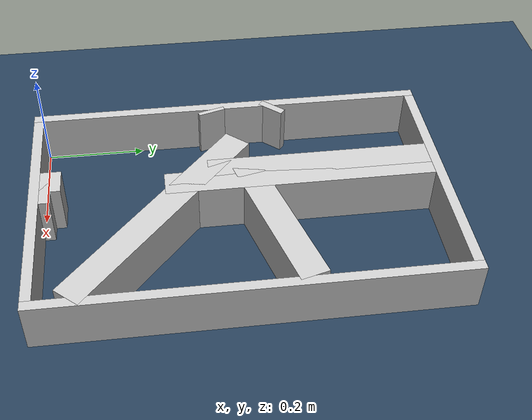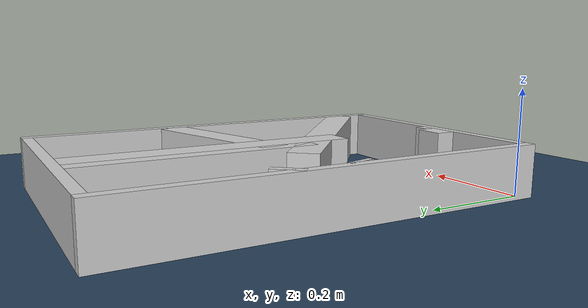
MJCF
<?xml version="1.0" ?>
<mujoco model="generated_real_template">
  <compiler angle="degree"/>
  <option timestep="0.002" integrator="implicitfast" iterations="100" cone="elliptic"/>
  <default>
    <geom density="1"/>
  </default>
  <asset>
    <texture builtin="gradient" height="3072" rgb1="0.3 0.5 0.7" rgb2="0 0 0" type="skybox" width="512"/>
    <texture builtin="checker" height="300" mark="edge" markrgb="0.8 0.8 0.8" name="groundplane" rgb1="0.2 0.3 0.4" rgb2="0.1 0.2 0.3" type="2d" width="300"/>
    <material name="groundplane" reflectance="0.2" texrepeat="5 5" texture="groundplane" texuniform="true"/>
  </asset>
  <worldbody>
    <light dir="0 0 -1" directional="true" pos="0 0 1.5"/>
    <geom name="floor" type="plane" condim="4" friction="0.5 0.005 0.001" material="groundplane" size="0 0 0.05"/>
    <body name="walls">
      <geom name="wall_boundary_left" type="box" condim="4" friction="1.0 0.005 0.0001" rgba="0.8 0.8 0.8 1" pos="-0.010000 0.387500 0.050000" euler="0 0 0.000000" size="0.010000 0.407500 0.050000"/>
      <geom name="wall_boundary_right" type="box" condim="4" friction="1.0 0.005 0.0001" rgba="0.8 0.8 0.8 1" pos="0.500000 0.387500 0.050000" euler="0 0 0.000000" size="0.010000 0.407500 0.050000"/>
      <geom name="wall_boundary_bottom" type="box" condim="4" friction="1.0 0.005 0.0001" rgba="0.8 0.8 0.8 1" pos="0.245000 -0.010000 0.050000" euler="0 0 0.000000" size="0.245000 0.010000 0.050000"/>
      <geom name="wall_boundary_top" type="box" condim="4" friction="1.0 0.005 0.0001" rgba="0.8 0.8 0.8 1" pos="0.245000 0.785000 0.050000" euler="0 0 0.000000" size="0.245000 0.010000 0.050000"/>
      <geom name="wall_inner_1_1" type="box" condim="4" friction="1.0 0.005 0.0001" rgba="0.8 0.8 0.8 1" pos="0.005896 0.483321 0.050000" euler="0 0 -41.342699" size="0.007854 0.028500 0.050000"/>
      <geom name="wall_inner_1_2" type="box" condim="4" friction="1.0 0.005 0.0001" rgba="0.8 0.8 0.8 1" pos="0.296332 0.227784 0.050000" euler="0 0 -41.342699" size="0.257959 0.028500 0.050000"/>
      <geom name="wall_inner_2_1" type="box" condim="4" friction="1.0 0.005 0.0001" rgba="0.8 0.8 0.8 1" pos="0.223078 0.010342 0.050000" euler="0 0 90.000000" size="0.010342 0.028500 0.050000"/>
      <geom name="wall_inner_2_2" type="box" condim="4" friction="1.0 0.005 0.0001" rgba="0.8 0.8 0.8 1" pos="0.223078 0.508486 0.050000" euler="0 0 90.000000" size="0.266514 0.028500 0.050000"/>
      <geom name="wall_inner_3_1" type="box" condim="4" friction="1.0 0.005 0.0001" rgba="0.8 0.8 0.8 1" pos="0.191538 0.020482 0.050000" euler="0 0 90.000000" size="0.020482 0.028500 0.050000"/>
      <geom name="wall_inner_3_2" type="box" condim="4" friction="1.0 0.005 0.0001" rgba="0.8 0.8 0.8 1" pos="0.191538 0.552289 0.050000" euler="0 0 90.000000" size="0.222711 0.028500 0.050000"/>
      <geom name="wall_inner_4_1" type="box" condim="4" friction="1.0 0.005 0.0001" rgba="0.8 0.8 0.8 1" pos="0.004527 0.353416 0.050000" euler="0 0 15.843057" size="0.004706 0.028500 0.050000"/>
      <geom name="wall_inner_4_2" type="box" condim="4" friction="1.0 0.005 0.0001" rgba="0.8 0.8 0.8 1" pos="0.336370 0.447587 0.050000" euler="0 0 15.843057" size="0.159697 0.028500 0.050000"/>
    </body>
  </worldbody>
</mujoco>
